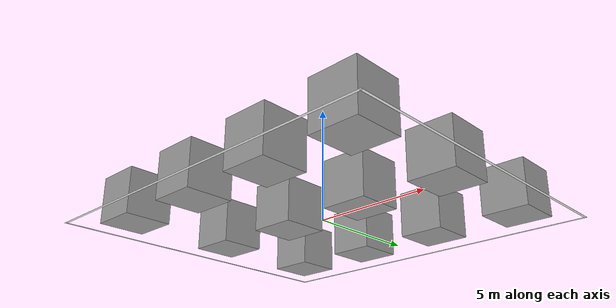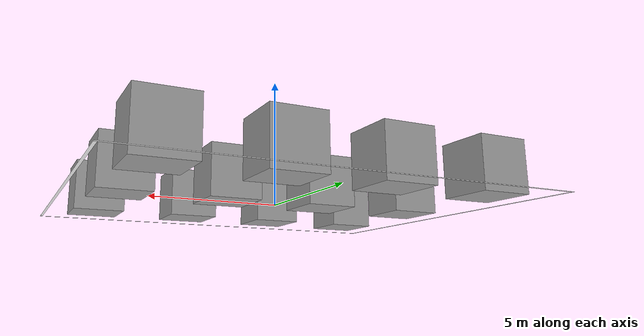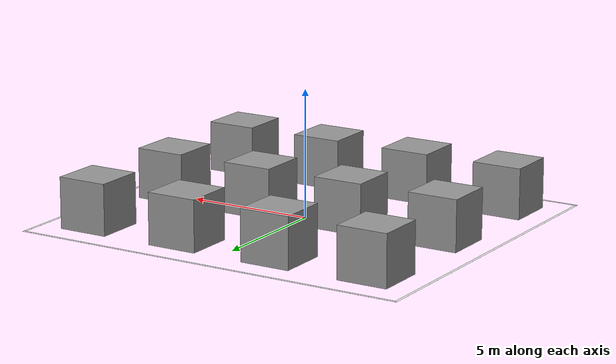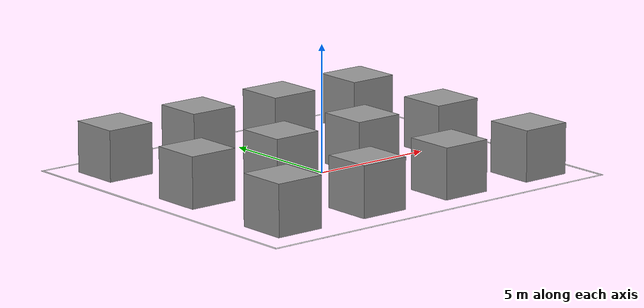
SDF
<?xml version='1.0'?>
<sdf version='1.6'>
  <model name='CNCUnit'>
    <link name='link_2'>
      <inertial>
        <mass>1</mass>
        <inertia>
          <ixx>0.166667</ixx>
          <ixy>0</ixy>
          <ixz>0</ixz>
          <iyy>0.166667</iyy>
          <iyz>0</iyz>
          <izz>0.166667</izz>
        </inertia>
        <pose frame=''>0 0 0 0 -0 0</pose>
      </inertial>
      <pose frame=''>0 0 0 0 -0 0</pose>
      <gravity>1</gravity>
      <self_collide>0</self_collide>
      <kinematic>0</kinematic>
      <enable_wind>0</enable_wind>
      <visual name='ModelPreview_4::link_2::visual_2'>
        <pose frame=''>-2 0 1 0 -0 0</pose>
        <geometry>
          <box>
            <size>2 2 2</size>
          </box>
        </geometry>
        <material>
          <lighting>1</lighting>
          <script>
            <uri>file://media/materials/scripts/gazebo.material</uri>
            <name>Gazebo/Grey</name>
          </script>
          <shader type='vertex'>
            <normal_map>__default__</normal_map>
          </shader>
          <ambient>0.3 0.3 0.3 1</ambient>
          <diffuse>0.7 0.7 0.7 1</diffuse>
          <specular>0.01 0.01 0.01 1</specular>
          <emissive>0 0 0 1</emissive>
        </material>
        <transparency>0</transparency>
        <cast_shadows>1</cast_shadows>
      </visual>
      <visual name='ModelPreview_4::link_2::visual_5'>
        <pose frame=''>-2 5 1 0 -0 0</pose>
        <geometry>
          <box>
            <size>2 2 2</size>
          </box>
        </geometry>
        <material>
          <lighting>1</lighting>
          <script>
            <uri>file://media/materials/scripts/gazebo.material</uri>
            <name>Gazebo/Grey</name>
          </script>
          <shader type='vertex'>
            <normal_map>__default__</normal_map>
          </shader>
          <ambient>0.3 0.3 0.3 1</ambient>
          <diffuse>0.7 0.7 0.7 1</diffuse>
          <specular>0.01 0.01 0.01 1</specular>
          <emissive>0 0 0 1</emissive>
        </material>
        <transparency>0</transparency>
        <cast_shadows>1</cast_shadows>
      </visual>
      <visual name='ModelPreview_4::link_2::visual_6'>
        <pose frame=''>2 5 1 0 -0 0</pose>
        <geometry>
          <box>
            <size>2 2 2</size>
          </box>
        </geometry>
        <material>
          <lighting>1</lighting>
          <script>
            <uri>file://media/materials/scripts/gazebo.material</uri>
            <name>Gazebo/Grey</name>
          </script>
          <shader type='vertex'>
            <normal_map>__default__</normal_map>
          </shader>
          <ambient>0.3 0.3 0.3 1</ambient>
          <diffuse>0.7 0.7 0.7 1</diffuse>
          <specular>0.01 0.01 0.01 1</specular>
          <emissive>0 0 0 1</emissive>
        </material>
        <transparency>0</transparency>
        <cast_shadows>1</cast_shadows>
      </visual>
      <visual name='ModelPreview_4::link_2::visual_1'>
        <pose frame=''>6 0 1 0 -0 0</pose>
        <geometry>
          <box>
            <size>2 2 2</size>
          </box>
        </geometry>
        <material>
          <lighting>1</lighting>
          <script>
            <uri>file://media/materials/scripts/gazebo.material</uri>
            <name>Gazebo/Grey</name>
          </script>
          <shader type='vertex'>
            <normal_map>__default__</normal_map>
          </shader>
          <ambient>0.3 0.3 0.3 1</ambient>
          <diffuse>0.7 0.7 0.7 1</diffuse>
          <specular>0.01 0.01 0.01 1</specular>
          <emissive>0 0 0 1</emissive>
        </material>
        <transparency>0</transparency>
        <cast_shadows>1</cast_shadows>
      </visual>
      <visual name='visual'>
        <pose frame=''>2 0 1 0 -0 0</pose>
        <geometry>
          <box>
            <size>2 2 2</size>
          </box>
        </geometry>
        <material>
          <lighting>1</lighting>
          <script>
            <uri>file://media/materials/scripts/gazebo.material</uri>
            <name>Gazebo/Grey</name>
          </script>
          <shader type='vertex'>
            <normal_map>__default__</normal_map>
          </shader>
          <ambient>0.3 0.3 0.3 1</ambient>
          <diffuse>0.7 0.7 0.7 1</diffuse>
          <specular>0.01 0.01 0.01 1</specular>
          <emissive>0 0 0 1</emissive>
        </material>
        <transparency>0</transparency>
        <cast_shadows>1</cast_shadows>
      </visual>
      <visual name='ModelPreview_4::link_2::visual_4'>
        <pose frame=''>-6 5 1 0 -0 0</pose>
        <geometry>
          <box>
            <size>2 2 2</size>
          </box>
        </geometry>
        <material>
          <lighting>1</lighting>
          <script>
            <uri>file://media/materials/scripts/gazebo.material</uri>
            <name>Gazebo/Grey</name>
          </script>
          <shader type='vertex'>
            <normal_map>__default__</normal_map>
          </shader>
          <ambient>0.3 0.3 0.3 1</ambient>
          <diffuse>0.7 0.7 0.7 1</diffuse>
          <specular>0.01 0.01 0.01 1</specular>
          <emissive>0 0 0 1</emissive>
        </material>
        <transparency>0</transparency>
        <cast_shadows>1</cast_shadows>
      </visual>
      <visual name='ModelPreview_4::link_2::visual_7'>
        <pose frame=''>6 5 1 0 -0 0</pose>
        <geometry>
          <box>
            <size>2 2 2</size>
          </box>
        </geometry>
        <material>
          <lighting>1</lighting>
          <script>
            <uri>file://media/materials/scripts/gazebo.material</uri>
            <name>Gazebo/Grey</name>
          </script>
          <shader type='vertex'>
            <normal_map>__default__</normal_map>
          </shader>
          <ambient>0.3 0.3 0.3 1</ambient>
          <diffuse>0.7 0.7 0.7 1</diffuse>
          <specular>0.01 0.01 0.01 1</specular>
          <emissive>0 0 0 1</emissive>
        </material>
        <transparency>0</transparency>
        <cast_shadows>1</cast_shadows>
      </visual>
      <visual name='ModelPreview_4::link_2::visual_3'>
        <pose frame=''>-6 0 1 0 -0 0</pose>
        <geometry>
          <box>
            <size>2 2 2</size>
          </box>
        </geometry>
        <material>
          <lighting>1</lighting>
          <script>
            <uri>file://media/materials/scripts/gazebo.material</uri>
            <name>Gazebo/Grey</name>
          </script>
          <shader type='vertex'>
            <normal_map>__default__</normal_map>
          </shader>
          <ambient>0.3 0.3 0.3 1</ambient>
          <diffuse>0.7 0.7 0.7 1</diffuse>
          <specular>0.01 0.01 0.01 1</specular>
          <emissive>0 0 0 1</emissive>
        </material>
        <transparency>0</transparency>
        <cast_shadows>1</cast_shadows>
      </visual>
      <visual name='ModelPreview_4::link_2::visual_8'>
        <pose frame=''>-6 -5 1 0 -0 0</pose>
        <geometry>
          <box>
            <size>2 2 2</size>
          </box>
        </geometry>
        <material>
          <lighting>1</lighting>
          <script>
            <uri>file://media/materials/scripts/gazebo.material</uri>
            <name>Gazebo/Grey</name>
          </script>
          <shader type='vertex'>
            <normal_map>__default__</normal_map>
          </shader>
          <ambient>0.3 0.3 0.3 1</ambient>
          <diffuse>0.7 0.7 0.7 1</diffuse>
          <specular>0.01 0.01 0.01 1</specular>
          <emissive>0 0 0 1</emissive>
        </material>
        <transparency>0</transparency>
        <cast_shadows>1</cast_shadows>
      </visual>
      <visual name='ModelPreview_4::link_2::visual_9'>
        <pose frame=''>-2 -5 1 0 -0 0</pose>
        <geometry>
          <box>
            <size>2 2 2</size>
          </box>
        </geometry>
        <material>
          <lighting>1</lighting>
          <script>
            <uri>file://media/materials/scripts/gazebo.material</uri>
            <name>Gazebo/Grey</name>
          </script>
          <shader type='vertex'>
            <normal_map>__default__</normal_map>
          </shader>
          <ambient>0.3 0.3 0.3 1</ambient>
          <diffuse>0.7 0.7 0.7 1</diffuse>
          <specular>0.01 0.01 0.01 1</specular>
          <emissive>0 0 0 1</emissive>
        </material>
        <transparency>0</transparency>
        <cast_shadows>1</cast_shadows>
      </visual>
      <visual name='ModelPreview_4::link_2::visual_10'>
        <pose frame=''>2 -5 1 0 -0 0</pose>
        <geometry>
          <box>
            <size>2 2 2</size>
          </box>
        </geometry>
        <material>
          <lighting>1</lighting>
          <script>
            <uri>file://media/materials/scripts/gazebo.material</uri>
            <name>Gazebo/Grey</name>
          </script>
          <shader type='vertex'>
            <normal_map>__default__</normal_map>
          </shader>
          <ambient>0.3 0.3 0.3 1</ambient>
          <diffuse>0.7 0.7 0.7 1</diffuse>
          <specular>0.01 0.01 0.01 1</specular>
          <emissive>0 0 0 1</emissive>
        </material>
        <transparency>0</transparency>
        <cast_shadows>1</cast_shadows>
      </visual>
      <visual name='ModelPreview_4::link_2::visual_11'>
        <pose frame=''>6 -5 1 0 -0 0</pose>
        <geometry>
          <box>
            <size>2 2 2</size>
          </box>
        </geometry>
        <material>
          <lighting>1</lighting>
          <script>
            <uri>file://media/materials/scripts/gazebo.material</uri>
            <name>Gazebo/Grey</name>
          </script>
          <shader type='vertex'>
            <normal_map>__default__</normal_map>
          </shader>
          <ambient>0.3 0.3 0.3 1</ambient>
          <diffuse>0.7 0.7 0.7 1</diffuse>
          <specular>0.01 0.01 0.01 1</specular>
          <emissive>0 0 0 1</emissive>
        </material>
        <transparency>0</transparency>
        <cast_shadows>1</cast_shadows>
      </visual>
      <visual name='ModelPreview_4::link_2::visual_12'>
        <pose frame=''>0 -7 0 0 -0 0</pose>
        <geometry>
          <box>
            <size>16 0.1 0.001</size>
          </box>
        </geometry>
        <material>
          <lighting>1</lighting>
          <script>
            <uri>file://media/materials/scripts/gazebo.material</uri>
            <name>Gazebo/White</name>
          </script>
        </material>
        <transparency>0</transparency>
        <cast_shadows>1</cast_shadows>
      </visual>
      <visual name='ModelPreview_4::link_2::visual_13'>
        <pose frame=''>0 7 0 0 -0 0</pose>
        <geometry>
          <box>
            <size>16 0.1 0.001</size>
          </box>
        </geometry>
        <material>
          <lighting>1</lighting>
          <script>
            <uri>file://media/materials/scripts/gazebo.material</uri>
            <name>Gazebo/White</name>
          </script>
        </material>
        <transparency>0</transparency>
        <cast_shadows>1</cast_shadows>
      </visual>
      <visual name='ModelPreview_4::link_2::visual_14'>
        <pose frame=''>7.95 0 0 0 -0 0</pose>
        <geometry>
          <box>
            <size>0.1 14 0.001</size>
          </box>
        </geometry>
        <material>
          <lighting>1</lighting>
          <script>
            <uri>file://media/materials/scripts/gazebo.material</uri>
            <name>Gazebo/White</name>
          </script>
          <emissive>0 0 0 1</emissive>
        </material>
        <transparency>0</transparency>
        <cast_shadows>1</cast_shadows>
      </visual>
      <visual name='ModelPreview_4::link_2::visual_15'>
        <pose frame=''>-7.95 0 0 0 -0 0</pose>
        <geometry>
          <box>
            <size>0.1 14 0.001</size>
          </box>
        </geometry>
        <material>
          <lighting>1</lighting>
          <script>
            <uri>file://media/materials/scripts/gazebo.material</uri>
            <name>Gazebo/White</name>
          </script>
        </material>
        <transparency>0</transparency>
        <cast_shadows>1</cast_shadows>
      </visual>
      <collision name='collision_9'>
        <laser_retro>0</laser_retro>
        <max_contacts>10</max_contacts>
        <pose frame=''>6 -5 1 0 -0 0</pose>
        <geometry>
          <box>
            <size>2 2 2</size>
          </box>
        </geometry>
        <surface>
          <friction>
            <ode>
              <mu>1</mu>
              <mu2>1</mu2>
              <fdir1>0 0 0</fdir1>
              <slip1>0</slip1>
              <slip2>0</slip2>
            </ode>
            <torsional>
              <coefficient>1</coefficient>
              <patch_radius>0</patch_radius>
              <surface_radius>0</surface_radius>
              <use_patch_radius>1</use_patch_radius>
              <ode>
                <slip>0</slip>
              </ode>
            </torsional>
          </friction>
          <bounce>
            <restitution_coefficient>0</restitution_coefficient>
            <threshold>1e+06</threshold>
          </bounce>
          <contact>
            <collide_without_contact>0</collide_without_contact>
            <collide_without_contact_bitmask>1</collide_without_contact_bitmask>
            <collide_bitmask>1</collide_bitmask>
            <ode>
              <soft_cfm>0</soft_cfm>
              <soft_erp>0.2</soft_erp>
              <kp>1e+13</kp>
              <kd>1</kd>
              <max_vel>0.01</max_vel>
              <min_depth>0</min_depth>
            </ode>
            <bullet>
              <split_impulse>1</split_impulse>
              <split_impulse_penetration_threshold>-0.01</split_impulse_penetration_threshold>
              <soft_cfm>0</soft_cfm>
              <soft_erp>0.2</soft_erp>
              <kp>1e+13</kp>
              <kd>1</kd>
            </bullet>
          </contact>
        </surface>
      </collision>
      <collision name='collision_6'>
        <laser_retro>0</laser_retro>
        <max_contacts>10</max_contacts>
        <pose frame=''>-2 5 1 0 -0 0</pose>
        <geometry>
          <box>
            <size>2 2 2</size>
          </box>
        </geometry>
        <surface>
          <friction>
            <ode>
              <mu>1</mu>
              <mu2>1</mu2>
              <fdir1>0 0 0</fdir1>
              <slip1>0</slip1>
              <slip2>0</slip2>
            </ode>
            <torsional>
              <coefficient>1</coefficient>
              <patch_radius>0</patch_radius>
              <surface_radius>0</surface_radius>
              <use_patch_radius>1</use_patch_radius>
              <ode>
                <slip>0</slip>
              </ode>
            </torsional>
          </friction>
          <bounce>
            <restitution_coefficient>0</restitution_coefficient>
            <threshold>1e+06</threshold>
          </bounce>
          <contact>
            <collide_without_contact>0</collide_without_contact>
            <collide_without_contact_bitmask>1</collide_without_contact_bitmask>
            <collide_bitmask>1</collide_bitmask>
            <ode>
              <soft_cfm>0</soft_cfm>
              <soft_erp>0.2</soft_erp>
              <kp>1e+13</kp>
              <kd>1</kd>
              <max_vel>0.01</max_vel>
              <min_depth>0</min_depth>
            </ode>
            <bullet>
              <split_impulse>1</split_impulse>
              <split_impulse_penetration_threshold>-0.01</split_impulse_penetration_threshold>
              <soft_cfm>0</soft_cfm>
              <soft_erp>0.2</soft_erp>
              <kp>1e+13</kp>
              <kd>1</kd>
            </bullet>
          </contact>
        </surface>
      </collision>
      <collision name='collision'>
        <laser_retro>0</laser_retro>
        <max_contacts>10</max_contacts>
        <pose frame=''>2 0 1 0 -0 0</pose>
        <geometry>
          <box>
            <size>2 2 2</size>
          </box>
        </geometry>
        <surface>
          <friction>
            <ode>
              <mu>1</mu>
              <mu2>1</mu2>
              <fdir1>0 0 0</fdir1>
              <slip1>0</slip1>
              <slip2>0</slip2>
            </ode>
            <torsional>
              <coefficient>1</coefficient>
              <patch_radius>0</patch_radius>
              <surface_radius>0</surface_radius>
              <use_patch_radius>1</use_patch_radius>
              <ode>
                <slip>0</slip>
              </ode>
            </torsional>
          </friction>
          <bounce>
            <restitution_coefficient>0</restitution_coefficient>
            <threshold>1e+06</threshold>
          </bounce>
          <contact>
            <collide_without_contact>0</collide_without_contact>
            <collide_without_contact_bitmask>1</collide_without_contact_bitmask>
            <collide_bitmask>1</collide_bitmask>
            <ode>
              <soft_cfm>0</soft_cfm>
              <soft_erp>0.2</soft_erp>
              <kp>1e+13</kp>
              <kd>1</kd>
              <max_vel>0.01</max_vel>
              <min_depth>0</min_depth>
            </ode>
            <bullet>
              <split_impulse>1</split_impulse>
              <split_impulse_penetration_threshold>-0.01</split_impulse_penetration_threshold>
              <soft_cfm>0</soft_cfm>
              <soft_erp>0.2</soft_erp>
              <kp>1e+13</kp>
              <kd>1</kd>
            </bullet>
          </contact>
        </surface>
      </collision>
      <collision name='collision_10'>
        <laser_retro>0</laser_retro>
        <max_contacts>10</max_contacts>
        <pose frame=''>-2 -5 1 0 -0 0</pose>
        <geometry>
          <box>
            <size>2 2 2</size>
          </box>
        </geometry>
        <surface>
          <friction>
            <ode>
              <mu>1</mu>
              <mu2>1</mu2>
              <fdir1>0 0 0</fdir1>
              <slip1>0</slip1>
              <slip2>0</slip2>
            </ode>
            <torsional>
              <coefficient>1</coefficient>
              <patch_radius>0</patch_radius>
              <surface_radius>0</surface_radius>
              <use_patch_radius>1</use_patch_radius>
              <ode>
                <slip>0</slip>
              </ode>
            </torsional>
          </friction>
          <bounce>
            <restitution_coefficient>0</restitution_coefficient>
            <threshold>1e+06</threshold>
          </bounce>
          <contact>
            <collide_without_contact>0</collide_without_contact>
            <collide_without_contact_bitmask>1</collide_without_contact_bitmask>
            <collide_bitmask>1</collide_bitmask>
            <ode>
              <soft_cfm>0</soft_cfm>
              <soft_erp>0.2</soft_erp>
              <kp>1e+13</kp>
              <kd>1</kd>
              <max_vel>0.01</max_vel>
              <min_depth>0</min_depth>
            </ode>
            <bullet>
              <split_impulse>1</split_impulse>
              <split_impulse_penetration_threshold>-0.01</split_impulse_penetration_threshold>
              <soft_cfm>0</soft_cfm>
              <soft_erp>0.2</soft_erp>
              <kp>1e+13</kp>
              <kd>1</kd>
            </bullet>
          </contact>
        </surface>
      </collision>
      <collision name='collision_4'>
        <laser_retro>0</laser_retro>
        <max_contacts>10</max_contacts>
        <pose frame=''>2 5 1 0 -0 0</pose>
        <geometry>
          <box>
            <size>2 2 2</size>
          </box>
        </geometry>
        <surface>
          <friction>
            <ode>
              <mu>1</mu>
              <mu2>1</mu2>
              <fdir1>0 0 0</fdir1>
              <slip1>0</slip1>
              <slip2>0</slip2>
            </ode>
            <torsional>
              <coefficient>1</coefficient>
              <patch_radius>0</patch_radius>
              <surface_radius>0</surface_radius>
              <use_patch_radius>1</use_patch_radius>
              <ode>
                <slip>0</slip>
              </ode>
            </torsional>
          </friction>
          <bounce>
            <restitution_coefficient>0</restitution_coefficient>
            <threshold>1e+06</threshold>
          </bounce>
          <contact>
            <collide_without_contact>0</collide_without_contact>
            <collide_without_contact_bitmask>1</collide_without_contact_bitmask>
            <collide_bitmask>1</collide_bitmask>
            <ode>
              <soft_cfm>0</soft_cfm>
              <soft_erp>0.2</soft_erp>
              <kp>1e+13</kp>
              <kd>1</kd>
              <max_vel>0.01</max_vel>
              <min_depth>0</min_depth>
            </ode>
            <bullet>
              <split_impulse>1</split_impulse>
              <split_impulse_penetration_threshold>-0.01</split_impulse_penetration_threshold>
              <soft_cfm>0</soft_cfm>
              <soft_erp>0.2</soft_erp>
              <kp>1e+13</kp>
              <kd>1</kd>
            </bullet>
          </contact>
        </surface>
      </collision>
      <collision name='collision_7'>
        <laser_retro>0</laser_retro>
        <max_contacts>10</max_contacts>
        <pose frame=''>-6 5 1 0 -0 0</pose>
        <geometry>
          <box>
            <size>2 2 2</size>
          </box>
        </geometry>
        <surface>
          <friction>
            <ode>
              <mu>1</mu>
              <mu2>1</mu2>
              <fdir1>0 0 0</fdir1>
              <slip1>0</slip1>
              <slip2>0</slip2>
            </ode>
            <torsional>
              <coefficient>1</coefficient>
              <patch_radius>0</patch_radius>
              <surface_radius>0</surface_radius>
              <use_patch_radius>1</use_patch_radius>
              <ode>
                <slip>0</slip>
              </ode>
            </torsional>
          </friction>
          <bounce>
            <restitution_coefficient>0</restitution_coefficient>
            <threshold>1e+06</threshold>
          </bounce>
          <contact>
            <collide_without_contact>0</collide_without_contact>
            <collide_without_contact_bitmask>1</collide_without_contact_bitmask>
            <collide_bitmask>1</collide_bitmask>
            <ode>
              <soft_cfm>0</soft_cfm>
              <soft_erp>0.2</soft_erp>
              <kp>1e+13</kp>
              <kd>1</kd>
              <max_vel>0.01</max_vel>
              <min_depth>0</min_depth>
            </ode>
            <bullet>
              <split_impulse>1</split_impulse>
              <split_impulse_penetration_threshold>-0.01</split_impulse_penetration_threshold>
              <soft_cfm>0</soft_cfm>
              <soft_erp>0.2</soft_erp>
              <kp>1e+13</kp>
              <kd>1</kd>
            </bullet>
          </contact>
        </surface>
      </collision>
      <collision name='collision_1'>
        <laser_retro>0</laser_retro>
        <max_contacts>10</max_contacts>
        <pose frame=''>-2 0 1 0 -0 0</pose>
        <geometry>
          <box>
            <size>2 2 2</size>
          </box>
        </geometry>
        <surface>
          <friction>
            <ode>
              <mu>1</mu>
              <mu2>1</mu2>
              <fdir1>0 0 0</fdir1>
              <slip1>0</slip1>
              <slip2>0</slip2>
            </ode>
            <torsional>
              <coefficient>1</coefficient>
              <patch_radius>0</patch_radius>
              <surface_radius>0</surface_radius>
              <use_patch_radius>1</use_patch_radius>
              <ode>
                <slip>0</slip>
              </ode>
            </torsional>
          </friction>
          <bounce>
            <restitution_coefficient>0</restitution_coefficient>
            <threshold>1e+06</threshold>
          </bounce>
          <contact>
            <collide_without_contact>0</collide_without_contact>
            <collide_without_contact_bitmask>1</collide_without_contact_bitmask>
            <collide_bitmask>1</collide_bitmask>
            <ode>
              <soft_cfm>0</soft_cfm>
              <soft_erp>0.2</soft_erp>
              <kp>1e+13</kp>
              <kd>1</kd>
              <max_vel>0.01</max_vel>
              <min_depth>0</min_depth>
            </ode>
            <bullet>
              <split_impulse>1</split_impulse>
              <split_impulse_penetration_threshold>-0.01</split_impulse_penetration_threshold>
              <soft_cfm>0</soft_cfm>
              <soft_erp>0.2</soft_erp>
              <kp>1e+13</kp>
              <kd>1</kd>
            </bullet>
          </contact>
        </surface>
      </collision>
      <collision name='collision_5'>
        <laser_retro>0</laser_retro>
        <max_contacts>10</max_contacts>
        <pose frame=''>6 5 1 0 -0 0</pose>
        <geometry>
          <box>
            <size>2 2 2</size>
          </box>
        </geometry>
        <surface>
          <friction>
            <ode>
              <mu>1</mu>
              <mu2>1</mu2>
              <fdir1>0 0 0</fdir1>
              <slip1>0</slip1>
              <slip2>0</slip2>
            </ode>
            <torsional>
              <coefficient>1</coefficient>
              <patch_radius>0</patch_radius>
              <surface_radius>0</surface_radius>
              <use_patch_radius>1</use_patch_radius>
              <ode>
                <slip>0</slip>
              </ode>
            </torsional>
          </friction>
          <bounce>
            <restitution_coefficient>0</restitution_coefficient>
            <threshold>1e+06</threshold>
          </bounce>
          <contact>
            <collide_without_contact>0</collide_without_contact>
            <collide_without_contact_bitmask>1</collide_without_contact_bitmask>
            <collide_bitmask>1</collide_bitmask>
            <ode>
              <soft_cfm>0</soft_cfm>
              <soft_erp>0.2</soft_erp>
              <kp>1e+13</kp>
              <kd>1</kd>
              <max_vel>0.01</max_vel>
              <min_depth>0</min_depth>
            </ode>
            <bullet>
              <split_impulse>1</split_impulse>
              <split_impulse_penetration_threshold>-0.01</split_impulse_penetration_threshold>
              <soft_cfm>0</soft_cfm>
              <soft_erp>0.2</soft_erp>
              <kp>1e+13</kp>
              <kd>1</kd>
            </bullet>
          </contact>
        </surface>
      </collision>
      <collision name='collision_3'>
        <laser_retro>0</laser_retro>
        <max_contacts>10</max_contacts>
        <pose frame=''>6 0 1 0 -0 0</pose>
        <geometry>
          <box>
            <size>2 2 2</size>
          </box>
        </geometry>
        <surface>
          <friction>
            <ode>
              <mu>1</mu>
              <mu2>1</mu2>
              <fdir1>0 0 0</fdir1>
              <slip1>0</slip1>
              <slip2>0</slip2>
            </ode>
            <torsional>
              <coefficient>1</coefficient>
              <patch_radius>0</patch_radius>
              <surface_radius>0</surface_radius>
              <use_patch_radius>1</use_patch_radius>
              <ode>
                <slip>0</slip>
              </ode>
            </torsional>
          </friction>
          <bounce>
            <restitution_coefficient>0</restitution_coefficient>
            <threshold>1e+06</threshold>
          </bounce>
          <contact>
            <collide_without_contact>0</collide_without_contact>
            <collide_without_contact_bitmask>1</collide_without_contact_bitmask>
            <collide_bitmask>1</collide_bitmask>
            <ode>
              <soft_cfm>0</soft_cfm>
              <soft_erp>0.2</soft_erp>
              <kp>1e+13</kp>
              <kd>1</kd>
              <max_vel>0.01</max_vel>
              <min_depth>0</min_depth>
            </ode>
            <bullet>
              <split_impulse>1</split_impulse>
              <split_impulse_penetration_threshold>-0.01</split_impulse_penetration_threshold>
              <soft_cfm>0</soft_cfm>
              <soft_erp>0.2</soft_erp>
              <kp>1e+13</kp>
              <kd>1</kd>
            </bullet>
          </contact>
        </surface>
      </collision>
      <collision name='collision_2'>
        <laser_retro>0</laser_retro>
        <max_contacts>10</max_contacts>
        <pose frame=''>-6 0 1 0 -0 0</pose>
        <geometry>
          <box>
            <size>2 2 2</size>
          </box>
        </geometry>
        <surface>
          <friction>
            <ode>
              <mu>1</mu>
              <mu2>1</mu2>
              <fdir1>0 0 0</fdir1>
              <slip1>0</slip1>
              <slip2>0</slip2>
            </ode>
            <torsional>
              <coefficient>1</coefficient>
              <patch_radius>0</patch_radius>
              <surface_radius>0</surface_radius>
              <use_patch_radius>1</use_patch_radius>
              <ode>
                <slip>0</slip>
              </ode>
            </torsional>
          </friction>
          <bounce>
            <restitution_coefficient>0</restitution_coefficient>
            <threshold>1e+06</threshold>
          </bounce>
          <contact>
            <collide_without_contact>0</collide_without_contact>
            <collide_without_contact_bitmask>1</collide_without_contact_bitmask>
            <collide_bitmask>1</collide_bitmask>
            <ode>
              <soft_cfm>0</soft_cfm>
              <soft_erp>0.2</soft_erp>
              <kp>1e+13</kp>
              <kd>1</kd>
              <max_vel>0.01</max_vel>
              <min_depth>0</min_depth>
            </ode>
            <bullet>
              <split_impulse>1</split_impulse>
              <split_impulse_penetration_threshold>-0.01</split_impulse_penetration_threshold>
              <soft_cfm>0</soft_cfm>
              <soft_erp>0.2</soft_erp>
              <kp>1e+13</kp>
              <kd>1</kd>
            </bullet>
          </contact>
        </surface>
      </collision>
      <collision name='collision_8'>
        <laser_retro>0</laser_retro>
        <max_contacts>10</max_contacts>
        <pose frame=''>2 -5 1 0 -0 0</pose>
        <geometry>
          <box>
            <size>2 2 2</size>
          </box>
        </geometry>
        <surface>
          <friction>
            <ode>
              <mu>1</mu>
              <mu2>1</mu2>
              <fdir1>0 0 0</fdir1>
              <slip1>0</slip1>
              <slip2>0</slip2>
            </ode>
            <torsional>
              <coefficient>1</coefficient>
              <patch_radius>0</patch_radius>
              <surface_radius>0</surface_radius>
              <use_patch_radius>1</use_patch_radius>
              <ode>
                <slip>0</slip>
              </ode>
            </torsional>
          </friction>
          <bounce>
            <restitution_coefficient>0</restitution_coefficient>
            <threshold>1e+06</threshold>
          </bounce>
          <contact>
            <collide_without_contact>0</collide_without_contact>
            <collide_without_contact_bitmask>1</collide_without_contact_bitmask>
            <collide_bitmask>1</collide_bitmask>
            <ode>
              <soft_cfm>0</soft_cfm>
              <soft_erp>0.2</soft_erp>
              <kp>1e+13</kp>
              <kd>1</kd>
              <max_vel>0.01</max_vel>
              <min_depth>0</min_depth>
            </ode>
            <bullet>
              <split_impulse>1</split_impulse>
              <split_impulse_penetration_threshold>-0.01</split_impulse_penetration_threshold>
              <soft_cfm>0</soft_cfm>
              <soft_erp>0.2</soft_erp>
              <kp>1e+13</kp>
              <kd>1</kd>
            </bullet>
          </contact>
        </surface>
      </collision>
      <collision name='collision_11'>
        <laser_retro>0</laser_retro>
        <max_contacts>10</max_contacts>
        <pose frame=''>-6 -5 1 0 -0 0</pose>
        <geometry>
          <box>
            <size>2 2 2</size>
          </box>
        </geometry>
        <surface>
          <friction>
            <ode>
              <mu>1</mu>
              <mu2>1</mu2>
              <fdir1>0 0 0</fdir1>
              <slip1>0</slip1>
              <slip2>0</slip2>
            </ode>
            <torsional>
              <coefficient>1</coefficient>
              <patch_radius>0</patch_radius>
              <surface_radius>0</surface_radius>
              <use_patch_radius>1</use_patch_radius>
              <ode>
                <slip>0</slip>
              </ode>
            </torsional>
          </friction>
          <bounce>
            <restitution_coefficient>0</restitution_coefficient>
            <threshold>1e+06</threshold>
          </bounce>
          <contact>
            <collide_without_contact>0</collide_without_contact>
            <collide_without_contact_bitmask>1</collide_without_contact_bitmask>
            <collide_bitmask>1</collide_bitmask>
            <ode>
              <soft_cfm>0</soft_cfm>
              <soft_erp>0.2</soft_erp>
              <kp>1e+13</kp>
              <kd>1</kd>
              <max_vel>0.01</max_vel>
              <min_depth>0</min_depth>
            </ode>
            <bullet>
              <split_impulse>1</split_impulse>
              <split_impulse_penetration_threshold>-0.01</split_impulse_penetration_threshold>
              <soft_cfm>0</soft_cfm>
              <soft_erp>0.2</soft_erp>
              <kp>1e+13</kp>
              <kd>1</kd>
            </bullet>
          </contact>
        </surface>
      </collision>
      <collision name='collision_12'>
        <laser_retro>0</laser_retro>
        <max_contacts>10</max_contacts>
        <pose frame=''>0 7 0 0 -0 0</pose>
        <geometry>
          <box>
            <size>16 0.05 0.001</size>
          </box>
        </geometry>
        <surface>
          <friction>
            <ode>
              <mu>1</mu>
              <mu2>1</mu2>
              <fdir1>0 0 0</fdir1>
              <slip1>0</slip1>
              <slip2>0</slip2>
            </ode>
            <torsional>
              <coefficient>1</coefficient>
              <patch_radius>0</patch_radius>
              <surface_radius>0</surface_radius>
              <use_patch_radius>1</use_patch_radius>
              <ode>
                <slip>0</slip>
              </ode>
            </torsional>
          </friction>
          <bounce>
            <restitution_coefficient>0</restitution_coefficient>
            <threshold>1e+06</threshold>
          </bounce>
          <contact>
            <collide_without_contact>0</collide_without_contact>
            <collide_without_contact_bitmask>1</collide_without_contact_bitmask>
            <collide_bitmask>1</collide_bitmask>
            <ode>
              <soft_cfm>0</soft_cfm>
              <soft_erp>0.2</soft_erp>
              <kp>1e+13</kp>
              <kd>1</kd>
              <max_vel>0.01</max_vel>
              <min_depth>0</min_depth>
            </ode>
            <bullet>
              <split_impulse>1</split_impulse>
              <split_impulse_penetration_threshold>-0.01</split_impulse_penetration_threshold>
              <soft_cfm>0</soft_cfm>
              <soft_erp>0.2</soft_erp>
              <kp>1e+13</kp>
              <kd>1</kd>
            </bullet>
          </contact>
        </surface>
      </collision>
      <collision name='collision_13'>
        <laser_retro>0</laser_retro>
        <max_contacts>10</max_contacts>
        <pose frame=''>0 -7 0 0 -0 0</pose>
        <geometry>
          <box>
            <size>16 0.05 0.001</size>
          </box>
        </geometry>
        <surface>
          <friction>
            <ode>
              <mu>1</mu>
              <mu2>1</mu2>
              <fdir1>0 0 0</fdir1>
              <slip1>0</slip1>
              <slip2>0</slip2>
            </ode>
            <torsional>
              <coefficient>1</coefficient>
              <patch_radius>0</patch_radius>
              <surface_radius>0</surface_radius>
              <use_patch_radius>1</use_patch_radius>
              <ode>
                <slip>0</slip>
              </ode>
            </torsional>
          </friction>
          <bounce>
            <restitution_coefficient>0</restitution_coefficient>
            <threshold>1e+06</threshold>
          </bounce>
          <contact>
            <collide_without_contact>0</collide_without_contact>
            <collide_without_contact_bitmask>1</collide_without_contact_bitmask>
            <collide_bitmask>1</collide_bitmask>
            <ode>
              <soft_cfm>0</soft_cfm>
              <soft_erp>0.2</soft_erp>
              <kp>1e+13</kp>
              <kd>1</kd>
              <max_vel>0.01</max_vel>
              <min_depth>0</min_depth>
            </ode>
            <bullet>
              <split_impulse>1</split_impulse>
              <split_impulse_penetration_threshold>-0.01</split_impulse_penetration_threshold>
              <soft_cfm>0</soft_cfm>
              <soft_erp>0.2</soft_erp>
              <kp>1e+13</kp>
              <kd>1</kd>
            </bullet>
          </contact>
        </surface>
      </collision>
      <collision name='collision_14'>
        <laser_retro>0</laser_retro>
        <max_contacts>10</max_contacts>
        <pose frame=''>8 0 0 0 -0 0</pose>
        <geometry>
          <box>
            <size>0.05 14.05 0.001</size>
          </box>
        </geometry>
        <surface>
          <friction>
            <ode>
              <mu>1</mu>
              <mu2>1</mu2>
              <fdir1>0 0 0</fdir1>
              <slip1>0</slip1>
              <slip2>0</slip2>
            </ode>
            <torsional>
              <coefficient>1</coefficient>
              <patch_radius>0</patch_radius>
              <surface_radius>0</surface_radius>
              <use_patch_radius>1</use_patch_radius>
              <ode>
                <slip>0</slip>
              </ode>
            </torsional>
          </friction>
          <bounce>
            <restitution_coefficient>0</restitution_coefficient>
            <threshold>1e+06</threshold>
          </bounce>
          <contact>
            <collide_without_contact>0</collide_without_contact>
            <collide_without_contact_bitmask>1</collide_without_contact_bitmask>
            <collide_bitmask>1</collide_bitmask>
            <ode>
              <soft_cfm>0</soft_cfm>
              <soft_erp>0.2</soft_erp>
              <kp>1e+13</kp>
              <kd>1</kd>
              <max_vel>0.01</max_vel>
              <min_depth>0</min_depth>
            </ode>
            <bullet>
              <split_impulse>1</split_impulse>
              <split_impulse_penetration_threshold>-0.01</split_impulse_penetration_threshold>
              <soft_cfm>0</soft_cfm>
              <soft_erp>0.2</soft_erp>
              <kp>1e+13</kp>
              <kd>1</kd>
            </bullet>
          </contact>
        </surface>
      </collision>
      <collision name='collision_15'>
        <laser_retro>0</laser_retro>
        <max_contacts>10</max_contacts>
        <pose frame=''>-8 0 0 0 -0 0</pose>
        <geometry>
          <box>
            <size>0.05 14.05 0.001</size>
          </box>
        </geometry>
        <surface>
          <friction>
            <ode>
              <mu>1</mu>
              <mu2>1</mu2>
              <fdir1>0 0 0</fdir1>
              <slip1>0</slip1>
              <slip2>0</slip2>
            </ode>
            <torsional>
              <coefficient>1</coefficient>
              <patch_radius>0</patch_radius>
              <surface_radius>0</surface_radius>
              <use_patch_radius>1</use_patch_radius>
              <ode>
                <slip>0</slip>
              </ode>
            </torsional>
          </friction>
          <bounce>
            <restitution_coefficient>0</restitution_coefficient>
            <threshold>1e+06</threshold>
          </bounce>
          <contact>
            <collide_without_contact>0</collide_without_contact>
            <collide_without_contact_bitmask>1</collide_without_contact_bitmask>
            <collide_bitmask>1</collide_bitmask>
            <ode>
              <soft_cfm>0</soft_cfm>
              <soft_erp>0.2</soft_erp>
              <kp>1e+13</kp>
              <kd>1</kd>
              <max_vel>0.01</max_vel>
              <min_depth>0</min_depth>
            </ode>
            <bullet>
              <split_impulse>1</split_impulse>
              <split_impulse_penetration_threshold>-0.01</split_impulse_penetration_threshold>
              <soft_cfm>0</soft_cfm>
              <soft_erp>0.2</soft_erp>
              <kp>1e+13</kp>
              <kd>1</kd>
            </bullet>
          </contact>
        </surface>
      </collision>
    </link>
    <static>1</static>
    <allow_auto_disable>1</allow_auto_disable>
  </model>
</sdf>
